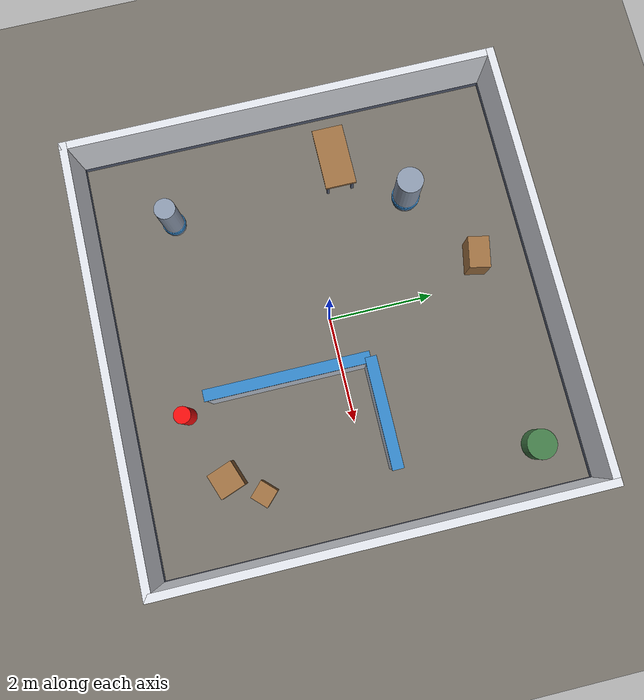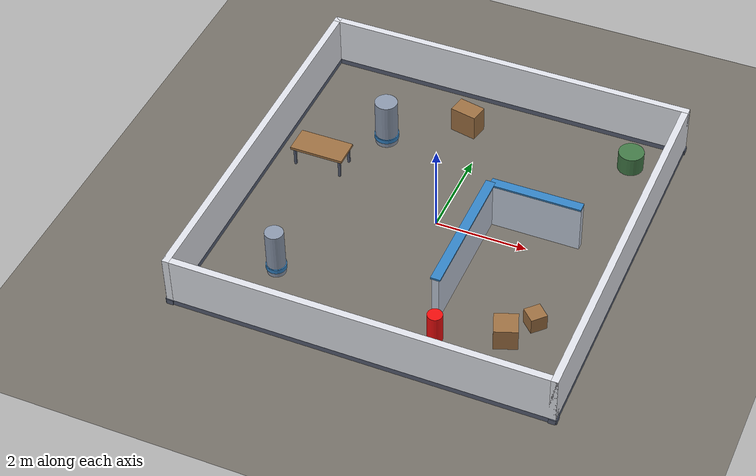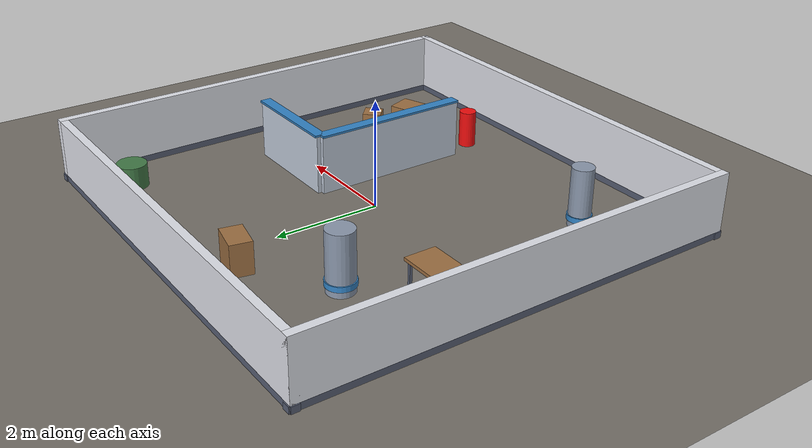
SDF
<?xml version="1.0" ?>
<sdf version="1.10">
  <world name="indoor">

    <physics name="1ms" type="ignored">
      <max_step_size>0.001</max_step_size>
      <real_time_factor>1.0</real_time_factor>
    </physics>

    <plugin filename="gz-sim-physics-system" name="gz::sim::systems::Physics"/>
    <plugin filename="gz-sim-user-commands-system" name="gz::sim::systems::UserCommands"/>
    <plugin filename="gz-sim-scene-broadcaster-system" name="gz::sim::systems::SceneBroadcaster"/>
    <plugin filename="gz-sim-sensors-system" name="gz::sim::systems::Sensors">
      <render_engine>ogre2</render_engine>
    </plugin>
    <plugin filename="gz-sim-imu-system" name="gz::sim::systems::Imu"/>
    <plugin filename="gz-sim-contact-system" name="gz::sim::systems::Contact"/>

    <gravity>0 0 -9.8</gravity>

    <scene>
      <ambient>0.62 0.63 0.66 1</ambient>
      <background>0.52 0.62 0.74 1</background>
      <shadows>true</shadows>
      <grid>false</grid>
    </scene>

    <!-- Key light plus two fills. One light casts hard shadows that hide obstacles from
         the camera; the fills keep the scene readable without flattening it. -->
    <light type="directional" name="sun">
      <cast_shadows>true</cast_shadows>
      <pose>0 0 12 0 0 0</pose>
      <diffuse>0.85 0.84 0.80 1</diffuse>
      <specular>0.25 0.25 0.25 1</specular>
      <direction>-0.45 0.35 -0.82</direction>
    </light>
    <light type="point" name="lamp_a">
      <pose>-2 -2 2.6 0 0 0</pose>
      <diffuse>0.45 0.45 0.50 1</diffuse>
      <specular>0.1 0.1 0.1 1</specular>
      <attenuation><range>12</range><linear>0.12</linear><quadratic>0.01</quadratic></attenuation>
      <cast_shadows>false</cast_shadows>
    </light>
    <light type="point" name="lamp_b">
      <pose>2.5 2.5 2.6 0 0 0</pose>
      <diffuse>0.40 0.42 0.48 1</diffuse>
      <specular>0.1 0.1 0.1 1</specular>
      <attenuation><range>12</range><linear>0.12</linear><quadratic>0.01</quadratic></attenuation>
      <cast_shadows>false</cast_shadows>
    </light>

    <model name="ground_plane">
      <static>true</static>
      <link name="link">
        <collision name="collision">
          <geometry><plane><normal>0 0 1</normal><size>40 40</size></plane></geometry>
        </collision>
        <visual name="visual">
          <geometry><plane><normal>0 0 1</normal><size>40 40</size></plane></geometry>
          <material>
            <ambient>0.253 0.242 0.226 1.0</ambient>
            <diffuse>0.460 0.440 0.410 1.0</diffuse>
            <specular>0.08 0.08 0.08 1.0</specular>
            <pbr><metal>
              <metalness>0.0</metalness>
              <roughness>0.95</roughness>
            </metal></pbr>
          </material>
        </visual>
      </link>
    </model>

    <model name="wall_north">
      <static>true</static>
      <pose>4.075 0 0.6599999999999999 0 0 0.0</pose>
      <link name="link">
        <collision name="collision">
          <geometry><box><size>0.15 8.3 1.08</size></box></geometry>
        </collision>
        <visual name="visual">
          <geometry><box><size>0.15 8.3 1.08</size></box></geometry>
          <material>
            <ambient>0.484 0.490 0.506 1.0</ambient>
            <diffuse>0.880 0.890 0.920 1.0</diffuse>
            <specular>0.15 0.15 0.15 1.0</specular>
            <pbr><metal>
              <metalness>0.0</metalness>
              <roughness>0.9</roughness>
            </metal></pbr>
          </material>
        </visual>
      </link>
    </model>
    <model name="skirt_north">
      <static>true</static>
      <pose>4.075 0 0.06 0 0 0.0</pose>
      <link name="link">
        <collision name="collision">
          <geometry><box><size>0.15074999999999997 8.3415 0.12</size></box></geometry>
        </collision>
        <visual name="visual">
          <geometry><box><size>0.15074999999999997 8.3415 0.12</size></box></geometry>
          <material>
            <ambient>0.187 0.204 0.248 1.0</ambient>
            <diffuse>0.340 0.370 0.450 1.0</diffuse>
            <specular>0.15 0.15 0.15 1.0</specular>
            <pbr><metal>
              <metalness>0.0</metalness>
              <roughness>0.6</roughness>
            </metal></pbr>
          </material>
        </visual>
      </link>
    </model>
    <model name="wall_south">
      <static>true</static>
      <pose>-4.075 0 0.6599999999999999 0 0 0.0</pose>
      <link name="link">
        <collision name="collision">
          <geometry><box><size>0.15 8.3 1.08</size></box></geometry>
        </collision>
        <visual name="visual">
          <geometry><box><size>0.15 8.3 1.08</size></box></geometry>
          <material>
            <ambient>0.484 0.490 0.506 1.0</ambient>
            <diffuse>0.880 0.890 0.920 1.0</diffuse>
            <specular>0.15 0.15 0.15 1.0</specular>
            <pbr><metal>
              <metalness>0.0</metalness>
              <roughness>0.9</roughness>
            </metal></pbr>
          </material>
        </visual>
      </link>
    </model>
    <model name="skirt_south">
      <static>true</static>
      <pose>-4.075 0 0.06 0 0 0.0</pose>
      <link name="link">
        <collision name="collision">
          <geometry><box><size>0.15074999999999997 8.3415 0.12</size></box></geometry>
        </collision>
        <visual name="visual">
          <geometry><box><size>0.15074999999999997 8.3415 0.12</size></box></geometry>
          <material>
            <ambient>0.187 0.204 0.248 1.0</ambient>
            <diffuse>0.340 0.370 0.450 1.0</diffuse>
            <specular>0.15 0.15 0.15 1.0</specular>
            <pbr><metal>
              <metalness>0.0</metalness>
              <roughness>0.6</roughness>
            </metal></pbr>
          </material>
        </visual>
      </link>
    </model>
    <model name="wall_east">
      <static>true</static>
      <pose>0 4.075 0.6599999999999999 0 0 0.0</pose>
      <link name="link">
        <collision name="collision">
          <geometry><box><size>8.3 0.15 1.08</size></box></geometry>
        </collision>
        <visual name="visual">
          <geometry><box><size>8.3 0.15 1.08</size></box></geometry>
          <material>
            <ambient>0.484 0.490 0.506 1.0</ambient>
            <diffuse>0.880 0.890 0.920 1.0</diffuse>
            <specular>0.15 0.15 0.15 1.0</specular>
            <pbr><metal>
              <metalness>0.0</metalness>
              <roughness>0.9</roughness>
            </metal></pbr>
          </material>
        </visual>
      </link>
    </model>
    <model name="skirt_east">
      <static>true</static>
      <pose>0 4.075 0.06 0 0 0.0</pose>
      <link name="link">
        <collision name="collision">
          <geometry><box><size>8.3415 0.15074999999999997 0.12</size></box></geometry>
        </collision>
        <visual name="visual">
          <geometry><box><size>8.3415 0.15074999999999997 0.12</size></box></geometry>
          <material>
            <ambient>0.187 0.204 0.248 1.0</ambient>
            <diffuse>0.340 0.370 0.450 1.0</diffuse>
            <specular>0.15 0.15 0.15 1.0</specular>
            <pbr><metal>
              <metalness>0.0</metalness>
              <roughness>0.6</roughness>
            </metal></pbr>
          </material>
        </visual>
      </link>
    </model>
    <model name="wall_west">
      <static>true</static>
      <pose>0 -4.075 0.6599999999999999 0 0 0.0</pose>
      <link name="link">
        <collision name="collision">
          <geometry><box><size>8.3 0.15 1.08</size></box></geometry>
        </collision>
        <visual name="visual">
          <geometry><box><size>8.3 0.15 1.08</size></box></geometry>
          <material>
            <ambient>0.484 0.490 0.506 1.0</ambient>
            <diffuse>0.880 0.890 0.920 1.0</diffuse>
            <specular>0.15 0.15 0.15 1.0</specular>
            <pbr><metal>
              <metalness>0.0</metalness>
              <roughness>0.9</roughness>
            </metal></pbr>
          </material>
        </visual>
      </link>
    </model>
    <model name="skirt_west">
      <static>true</static>
      <pose>0 -4.075 0.06 0 0 0.0</pose>
      <link name="link">
        <collision name="collision">
          <geometry><box><size>8.3415 0.15074999999999997 0.12</size></box></geometry>
        </collision>
        <visual name="visual">
          <geometry><box><size>8.3415 0.15074999999999997 0.12</size></box></geometry>
          <material>
            <ambient>0.187 0.204 0.248 1.0</ambient>
            <diffuse>0.340 0.370 0.450 1.0</diffuse>
            <specular>0.15 0.15 0.15 1.0</specular>
            <pbr><metal>
              <metalness>0.0</metalness>
              <roughness>0.6</roughness>
            </metal></pbr>
          </material>
        </visual>
      </link>
    </model>
    <model name="partition_a">
      <static>true</static>
      <pose>1.0 -1.0 0.55 0 0 0.0</pose>
      <link name="link">
        <collision name="collision">
          <geometry><box><size>0.15 3.0 1.1</size></box></geometry>
        </collision>
        <visual name="visual">
          <geometry><box><size>0.15 3.0 1.1</size></box></geometry>
          <material>
            <ambient>0.418 0.440 0.473 1.0</ambient>
            <diffuse>0.760 0.800 0.860 1.0</diffuse>
            <specular>0.15 0.15 0.15 1.0</specular>
            <pbr><metal>
              <metalness>0.0</metalness>
              <roughness>0.85</roughness>
            </metal></pbr>
          </material>
        </visual>
      </link>
    </model>
    <model name="partition_b">
      <static>true</static>
      <pose>2.0 0.5 0.55 0 0 0.0</pose>
      <link name="link">
        <collision name="collision">
          <geometry><box><size>2.0 0.15 1.1</size></box></geometry>
        </collision>
        <visual name="visual">
          <geometry><box><size>2.0 0.15 1.1</size></box></geometry>
          <material>
            <ambient>0.418 0.440 0.473 1.0</ambient>
            <diffuse>0.760 0.800 0.860 1.0</diffuse>
            <specular>0.15 0.15 0.15 1.0</specular>
            <pbr><metal>
              <metalness>0.0</metalness>
              <roughness>0.85</roughness>
            </metal></pbr>
          </material>
        </visual>
      </link>
    </model>
    <model name="partition_a_cap">
      <static>true</static>
      <pose>1.0 -1.0 1.12 0 0 0.0</pose>
      <link name="link">
        <collision name="collision">
          <geometry><box><size>0.21 3.0 0.04</size></box></geometry>
        </collision>
        <visual name="visual">
          <geometry><box><size>0.21 3.0 0.04</size></box></geometry>
          <material>
            <ambient>0.110 0.286 0.429 1.0</ambient>
            <diffuse>0.200 0.520 0.780 1.0</diffuse>
            <specular>0.4 0.4 0.4 1.0</specular>
            <pbr><metal>
              <metalness>0.0</metalness>
              <roughness>0.4</roughness>
            </metal></pbr>
          </material>
        </visual>
      </link>
    </model>
    <model name="partition_b_cap">
      <static>true</static>
      <pose>2.0 0.5 1.12 0 0 0.0</pose>
      <link name="link">
        <collision name="collision">
          <geometry><box><size>2.0 0.21 0.04</size></box></geometry>
        </collision>
        <visual name="visual">
          <geometry><box><size>2.0 0.21 0.04</size></box></geometry>
          <material>
            <ambient>0.110 0.286 0.429 1.0</ambient>
            <diffuse>0.200 0.520 0.780 1.0</diffuse>
            <specular>0.4 0.4 0.4 1.0</specular>
            <pbr><metal>
              <metalness>0.0</metalness>
              <roughness>0.4</roughness>
            </metal></pbr>
          </material>
        </visual>
      </link>
    </model>
    <model name="pillar_1">
      <static>true</static>
      <pose>-2.0 2.0 0.55 0 0 0</pose>
      <link name="link">
        <collision name="collision">
          <geometry><cylinder><radius>0.25</radius><length>1.1</length></cylinder></geometry>
        </collision>
        <visual name="visual">
          <geometry><cylinder><radius>0.25</radius><length>1.1</length></cylinder></geometry>
          <material>
            <ambient>0.303 0.330 0.374 1.0</ambient>
            <diffuse>0.550 0.600 0.680 1.0</diffuse>
            <specular>0.15 0.15 0.15 1.0</specular>
            <pbr><metal>
              <metalness>0.3</metalness>
              <roughness>0.5</roughness>
            </metal></pbr>
          </material>
        </visual>
      </link>
    </model>
    <model name="pillar_1_band">
      <static>true</static>
      <pose>-2.0 2.0 0.17 0 0 0</pose>
      <link name="link">
        <collision name="collision">
          <geometry><cylinder><radius>0.27</radius><length>0.1</length></cylinder></geometry>
        </collision>
        <visual name="visual">
          <geometry><cylinder><radius>0.27</radius><length>0.1</length></cylinder></geometry>
          <material>
            <ambient>0.110 0.286 0.429 1.0</ambient>
            <diffuse>0.200 0.520 0.780 1.0</diffuse>
            <specular>0.5 0.5 0.5 1.0</specular>
            <pbr><metal>
              <metalness>0.0</metalness>
              <roughness>0.3</roughness>
            </metal></pbr>
          </material>
        </visual>
      </link>
    </model>
    <model name="pillar_2">
      <static>true</static>
      <pose>-2.5 -2.5 0.55 0 0 0</pose>
      <link name="link">
        <collision name="collision">
          <geometry><cylinder><radius>0.2</radius><length>1.1</length></cylinder></geometry>
        </collision>
        <visual name="visual">
          <geometry><cylinder><radius>0.2</radius><length>1.1</length></cylinder></geometry>
          <material>
            <ambient>0.303 0.330 0.374 1.0</ambient>
            <diffuse>0.550 0.600 0.680 1.0</diffuse>
            <specular>0.15 0.15 0.15 1.0</specular>
            <pbr><metal>
              <metalness>0.3</metalness>
              <roughness>0.5</roughness>
            </metal></pbr>
          </material>
        </visual>
      </link>
    </model>
    <model name="pillar_2_band">
      <static>true</static>
      <pose>-2.5 -2.5 0.17 0 0 0</pose>
      <link name="link">
        <collision name="collision">
          <geometry><cylinder><radius>0.22</radius><length>0.1</length></cylinder></geometry>
        </collision>
        <visual name="visual">
          <geometry><cylinder><radius>0.22</radius><length>0.1</length></cylinder></geometry>
          <material>
            <ambient>0.110 0.286 0.429 1.0</ambient>
            <diffuse>0.200 0.520 0.780 1.0</diffuse>
            <specular>0.5 0.5 0.5 1.0</specular>
            <pbr><metal>
              <metalness>0.0</metalness>
              <roughness>0.3</roughness>
            </metal></pbr>
          </material>
        </visual>
      </link>
    </model>
    <model name="crate_1">
      <static>true</static>
      <pose>2.5 -2.5 0.25 0 0 0.35</pose>
      <link name="link">
        <collision name="collision">
          <geometry><box><size>0.5 0.5 0.5</size></box></geometry>
        </collision>
        <visual name="visual">
          <geometry><box><size>0.5 0.5 0.5</size></box></geometry>
          <material>
            <ambient>0.341 0.242 0.143 1.0</ambient>
            <diffuse>0.620 0.440 0.260 1.0</diffuse>
            <specular>0.15 0.15 0.15 1.0</specular>
            <pbr><metal>
              <metalness>0.0</metalness>
              <roughness>0.9</roughness>
            </metal></pbr>
          </material>
        </visual>
      </link>
    </model>
    <model name="crate_2">
      <static>true</static>
      <pose>-0.5 3.0 0.3 0 0 -0.2</pose>
      <link name="link">
        <collision name="collision">
          <geometry><box><size>0.6 0.4 0.6</size></box></geometry>
        </collision>
        <visual name="visual">
          <geometry><box><size>0.6 0.4 0.6</size></box></geometry>
          <material>
            <ambient>0.341 0.242 0.143 1.0</ambient>
            <diffuse>0.620 0.440 0.260 1.0</diffuse>
            <specular>0.15 0.15 0.15 1.0</specular>
            <pbr><metal>
              <metalness>0.0</metalness>
              <roughness>0.9</roughness>
            </metal></pbr>
          </material>
        </visual>
      </link>
    </model>
    <model name="crate_3">
      <static>true</static>
      <pose>2.9 -1.9 0.18 0 0 0.8</pose>
      <link name="link">
        <collision name="collision">
          <geometry><box><size>0.36 0.36 0.36</size></box></geometry>
        </collision>
        <visual name="visual">
          <geometry><box><size>0.36 0.36 0.36</size></box></geometry>
          <material>
            <ambient>0.341 0.242 0.143 1.0</ambient>
            <diffuse>0.620 0.440 0.260 1.0</diffuse>
            <specular>0.15 0.15 0.15 1.0</specular>
            <pbr><metal>
              <metalness>0.0</metalness>
              <roughness>0.9</roughness>
            </metal></pbr>
          </material>
        </visual>
      </link>
    </model>
    <model name="table_top">
      <static>true</static>
      <pose>-3.0 0.8 0.46 0 0 0.0</pose>
      <link name="link">
        <collision name="collision">
          <geometry><box><size>1.2 0.6 0.06</size></box></geometry>
        </collision>
        <visual name="visual">
          <geometry><box><size>1.2 0.6 0.06</size></box></geometry>
          <material>
            <ambient>0.341 0.242 0.143 1.0</ambient>
            <diffuse>0.620 0.440 0.260 1.0</diffuse>
            <specular>0.3 0.3 0.3 1.0</specular>
            <pbr><metal>
              <metalness>0.0</metalness>
              <roughness>0.5</roughness>
            </metal></pbr>
          </material>
        </visual>
      </link>
    </model>
    <model name="table_leg_0">
      <static>true</static>
      <pose>-3.52 0.56 0.22 0 0 0.0</pose>
      <link name="link">
        <collision name="collision">
          <geometry><box><size>0.05 0.05 0.44</size></box></geometry>
        </collision>
        <visual name="visual">
          <geometry><box><size>0.05 0.05 0.44</size></box></geometry>
          <material>
            <ambient>0.187 0.204 0.248 1.0</ambient>
            <diffuse>0.340 0.370 0.450 1.0</diffuse>
            <specular>0.15 0.15 0.15 1.0</specular>
            <pbr><metal>
              <metalness>0.0</metalness>
              <roughness>0.6</roughness>
            </metal></pbr>
          </material>
        </visual>
      </link>
    </model>
    <model name="table_leg_1">
      <static>true</static>
      <pose>-3.52 1.04 0.22 0 0 0.0</pose>
      <link name="link">
        <collision name="collision">
          <geometry><box><size>0.05 0.05 0.44</size></box></geometry>
        </collision>
        <visual name="visual">
          <geometry><box><size>0.05 0.05 0.44</size></box></geometry>
          <material>
            <ambient>0.187 0.204 0.248 1.0</ambient>
            <diffuse>0.340 0.370 0.450 1.0</diffuse>
            <specular>0.15 0.15 0.15 1.0</specular>
            <pbr><metal>
              <metalness>0.0</metalness>
              <roughness>0.6</roughness>
            </metal></pbr>
          </material>
        </visual>
      </link>
    </model>
    <model name="table_leg_2">
      <static>true</static>
      <pose>-2.48 0.56 0.22 0 0 0.0</pose>
      <link name="link">
        <collision name="collision">
          <geometry><box><size>0.05 0.05 0.44</size></box></geometry>
        </collision>
        <visual name="visual">
          <geometry><box><size>0.05 0.05 0.44</size></box></geometry>
          <material>
            <ambient>0.187 0.204 0.248 1.0</ambient>
            <diffuse>0.340 0.370 0.450 1.0</diffuse>
            <specular>0.15 0.15 0.15 1.0</specular>
            <pbr><metal>
              <metalness>0.0</metalness>
              <roughness>0.6</roughness>
            </metal></pbr>
          </material>
        </visual>
      </link>
    </model>
    <model name="table_leg_3">
      <static>true</static>
      <pose>-2.48 1.04 0.22 0 0 0.0</pose>
      <link name="link">
        <collision name="collision">
          <geometry><box><size>0.05 0.05 0.44</size></box></geometry>
        </collision>
        <visual name="visual">
          <geometry><box><size>0.05 0.05 0.44</size></box></geometry>
          <material>
            <ambient>0.187 0.204 0.248 1.0</ambient>
            <diffuse>0.340 0.370 0.450 1.0</diffuse>
            <specular>0.15 0.15 0.15 1.0</specular>
            <pbr><metal>
              <metalness>0.0</metalness>
              <roughness>0.6</roughness>
            </metal></pbr>
          </material>
        </visual>
      </link>
    </model>
    <model name="planter">
      <static>true</static>
      <pose>3.2 3.2 0.22 0 0 0</pose>
      <link name="link">
        <collision name="collision">
          <geometry><cylinder><radius>0.28</radius><length>0.44</length></cylinder></geometry>
        </collision>
        <visual name="visual">
          <geometry><cylinder><radius>0.28</radius><length>0.44</length></cylinder></geometry>
          <material>
            <ambient>0.143 0.264 0.154 1.0</ambient>
            <diffuse>0.260 0.480 0.280 1.0</diffuse>
            <specular>0.15 0.15 0.15 1.0</specular>
            <pbr><metal>
              <metalness>0.0</metalness>
              <roughness>0.9</roughness>
            </metal></pbr>
          </material>
        </visual>
      </link>
    </model>

    <model name="overview_camera">
      <static>true</static>
      <pose>-7.0 -7.0 6.8 0 0.60 0.785</pose>
      <link name="link">
        <sensor name="overview" type="camera">
          <topic>overview/image</topic>
          <update_rate>2</update_rate>
          <always_on>true</always_on>
          <camera>
            <horizontal_fov>1.25</horizontal_fov>
            <image>
              <width>1280</width>
              <height>800</height>
              <format>R8G8B8</format>
            </image>
            <clip><near>0.1</near><far>60.0</far></clip>
          </camera>
        </sensor>
      </link>
    </model>

    <!-- Close-up documentation camera aimed at the spawn point, for the same reason as
         overview_camera: it renders on the GPU even when Gazebo runs headless. 1 Hz. -->
    <model name="robot_closeup_camera">
      <static>true</static>
      <pose>-2.00 -3.90 0.55 0 0.29 2.408</pose>
      <link name="link">
        <sensor name="closeup" type="camera">
          <topic>closeup/image</topic>
          <update_rate>1</update_rate>
          <always_on>true</always_on>
          <camera>
            <horizontal_fov>0.72</horizontal_fov>
            <image><width>1100</width><height>750</height><format>R8G8B8</format></image>
            <clip><near>0.05</near><far>40.0</far></clip>
          </camera>
        </sensor>
      </link>
    </model>

    <model name="target_post">
      <static>true</static>
      <pose>1.2 -3.0 0.35 0 0 0</pose>
      <link name="link">
        <collision name="collision">
          <geometry><cylinder><radius>0.16</radius><length>0.7</length></cylinder></geometry>
        </collision>
        <visual name="visual">
          <geometry><cylinder><radius>0.16</radius><length>0.7</length></cylinder></geometry>
          <material>
            <ambient>0.55 0.02 0.02 1</ambient>
            <diffuse>0.95 0.05 0.05 1</diffuse>
            <specular>0.3 0.1 0.1 1</specular>
          </material>
        </visual>
      </link>
    </model>

  </world>
</sdf>
